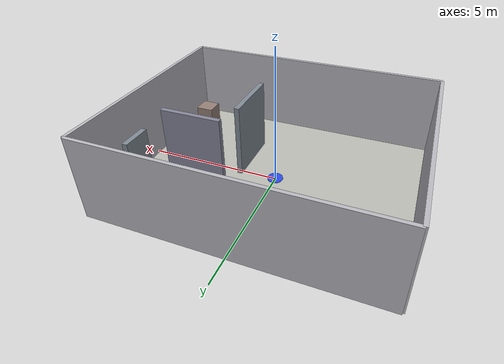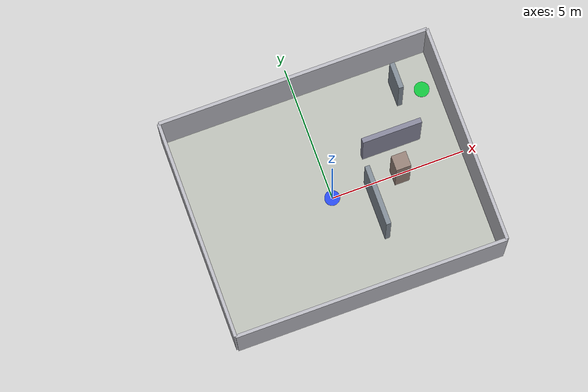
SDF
<sdf version="1.9">
 <world name="S9_multi_corner">
  <physics name="1ms" type="ignore">
   <max_step_size>0.001</max_step_size>
   <real_time_factor>1.0</real_time_factor>
  </physics>
  <plugin filename="gz-sim-physics-system" name="gz::sim::systems::Physics"/>
  <plugin filename="gz-sim-sensors-system" name="gz::sim::systems::Sensors">
   <render_engine>ogre2</render_engine>
  </plugin>
  <plugin filename="gz-sim-user-commands-system" name="gz::sim::systems::UserCommands"/>
  <plugin filename="gz-sim-scene-broadcaster-system" name="gz::sim::systems::SceneBroadcaster"/>
  <plugin filename="gz-sim-imu-system" name="gz::sim::systems::Imu"/>
  <plugin filename="gz-sim-navsat-system" name="gz::sim::systems::NavSat"/>
  <scene><ambient>0.85 0.85 0.85</ambient><background>0.78 0.80 0.82</background><grid>false</grid></scene>
  <spherical_coordinates>
   <latitude_deg>-35.363262</latitude_deg>
   <longitude_deg>149.165237</longitude_deg>
   <elevation>584</elevation>
   <heading_deg>0</heading_deg>
   <surface_model>EARTH_WGS84</surface_model>
  </spherical_coordinates>
  <light type="directional" name="sun">
   <pose>0 0 8 0 0 0</pose>
   <diffuse>0.8 0.8 0.8 1</diffuse>
   <specular>0.3 0.3 0.3 1</specular>
   <attenuation>
    <range>1000</range>
    <constant>0.9</constant>
    <linear>0.01</linear>
    <quadratic>0.001</quadratic>
   </attenuation>
   <direction>-0.5 0.1 -0.9</direction>
  </light>
  <model name="l2_start_marker">
   <static>true</static>
   <pose>0.000 0.000 0.030 0 0 0</pose>
   <link name="link">
    <visual name="visual">
     <geometry><cylinder><radius>0.28</radius><length>0.04</length></cylinder></geometry>
     <material>
      <ambient>0.10 0.25 1.00 0.85</ambient>
      <diffuse>0.10 0.25 1.00 0.85</diffuse>
      <specular>0.25 0.25 0.25 1</specular>
     </material>
    </visual>
   </link>
  </model>
  <model name="l2_goal_marker">
   <static>true</static>
   <pose>4.400 2.650 0.030 0 0 0</pose>
   <link name="link">
    <visual name="visual">
     <geometry><cylinder><radius>0.28</radius><length>0.04</length></cylinder></geometry>
     <material>
      <ambient>0.00 0.80 0.20 0.85</ambient>
      <diffuse>0.00 0.80 0.20 0.85</diffuse>
      <specular>0.25 0.25 0.25 1</specular>
     </material>
    </visual>
   </link>
  </model>
  <model name="l2_floor">
   <static>true</static>
   <pose>0.000 0.000 -0.025 0 0 0</pose>
   <link name="link">
    <collision name="collision"><geometry><box><size>10.000 8.000 0.050</size></box></geometry></collision>
    <visual name="visual">
     <geometry><box><size>10.000 8.000 0.050</size></box></geometry>
     <material>
      <ambient>0.72 0.73 0.70 1</ambient>
      <diffuse>0.72 0.73 0.70 1</diffuse>
      <specular>0.25 0.25 0.25 1</specular>
     </material>
    </visual>
   </link>
  </model>
  <model name="l2_wall_x_positive">
   <static>true</static>
   <pose>5.000 0.000 1.500 0 0 0</pose>
   <link name="link">
    <collision name="collision"><geometry><box><size>0.120 8.000 3.000</size></box></geometry></collision>
    <visual name="visual">
     <geometry><box><size>0.120 8.000 3.000</size></box></geometry>
     <material>
      <ambient>0.72 0.72 0.75 1</ambient>
      <diffuse>0.72 0.72 0.75 1</diffuse>
      <specular>0.25 0.25 0.25 1</specular>
     </material>
    </visual>
   </link>
  </model>
  <model name="l2_wall_x_negative">
   <static>true</static>
   <pose>-5.000 0.000 1.500 0 0 0</pose>
   <link name="link">
    <collision name="collision"><geometry><box><size>0.120 8.000 3.000</size></box></geometry></collision>
    <visual name="visual">
     <geometry><box><size>0.120 8.000 3.000</size></box></geometry>
     <material>
      <ambient>0.72 0.72 0.75 1</ambient>
      <diffuse>0.72 0.72 0.75 1</diffuse>
      <specular>0.25 0.25 0.25 1</specular>
     </material>
    </visual>
   </link>
  </model>
  <model name="l2_wall_y_positive">
   <static>true</static>
   <pose>0.000 4.000 1.500 0 0 0</pose>
   <link name="link">
    <collision name="collision"><geometry><box><size>10.000 0.120 3.000</size></box></geometry></collision>
    <visual name="visual">
     <geometry><box><size>10.000 0.120 3.000</size></box></geometry>
     <material>
      <ambient>0.72 0.72 0.75 1</ambient>
      <diffuse>0.72 0.72 0.75 1</diffuse>
      <specular>0.25 0.25 0.25 1</specular>
     </material>
    </visual>
   </link>
  </model>
  <model name="l2_wall_y_negative">
   <static>true</static>
   <pose>0.000 -4.000 1.500 0 0 0</pose>
   <link name="link">
    <collision name="collision"><geometry><box><size>10.000 0.120 3.000</size></box></geometry></collision>
    <visual name="visual">
     <geometry><box><size>10.000 0.120 3.000</size></box></geometry>
     <material>
      <ambient>0.72 0.72 0.75 1</ambient>
      <diffuse>0.72 0.72 0.75 1</diffuse>
      <specular>0.25 0.25 0.25 1</specular>
     </material>
    </visual>
   </link>
  </model>
  <model name="multi_corner_wall_1">
   <static>true</static>
   <pose>1.350 -0.950 1.350 0 0 0</pose>
   <link name="link">
    <collision name="collision"><geometry><box><size>0.180 2.200 2.700</size></box></geometry></collision>
    <visual name="visual">
     <geometry><box><size>0.180 2.200 2.700</size></box></geometry>
     <material>
      <ambient>0.50 0.54 0.58 1</ambient>
      <diffuse>0.50 0.54 0.58 1</diffuse>
      <specular>0.25 0.25 0.25 1</specular>
     </material>
    </visual>
   </link>
  </model>
  <model name="multi_corner_wall_2">
   <static>true</static>
   <pose>2.600 1.050 1.350 0 0 0</pose>
   <link name="link">
    <collision name="collision"><geometry><box><size>2.200 0.180 2.700</size></box></geometry></collision>
    <visual name="visual">
     <geometry><box><size>2.200 0.180 2.700</size></box></geometry>
     <material>
      <ambient>0.52 0.52 0.60 1</ambient>
      <diffuse>0.52 0.52 0.60 1</diffuse>
      <specular>0.25 0.25 0.25 1</specular>
     </material>
    </visual>
   </link>
  </model>
  <model name="multi_corner_wall_3">
   <static>true</static>
   <pose>3.450 2.850 1.350 0 0 0</pose>
   <link name="link">
    <collision name="collision"><geometry><box><size>0.180 0.950 2.700</size></box></geometry></collision>
    <visual name="visual">
     <geometry><box><size>0.180 0.950 2.700</size></box></geometry>
     <material>
      <ambient>0.50 0.54 0.58 1</ambient>
      <diffuse>0.50 0.54 0.58 1</diffuse>
      <specular>0.25 0.25 0.25 1</specular>
     </material>
    </visual>
   </link>
  </model>
  <model name="multi_corner_block">
   <static>true</static>
   <pose>2.550 -0.050 1.250 0 0 0</pose>
   <link name="link">
    <collision name="collision"><geometry><box><size>0.550 0.550 2.500</size></box></geometry></collision>
    <visual name="visual">
     <geometry><box><size>0.550 0.550 2.500</size></box></geometry>
     <material>
      <ambient>0.58 0.50 0.46 1</ambient>
      <diffuse>0.58 0.50 0.46 1</diffuse>
      <specular>0.25 0.25 0.25 1</specular>
     </material>
    </visual>
   </link>
  </model>
 </world>
</sdf>
